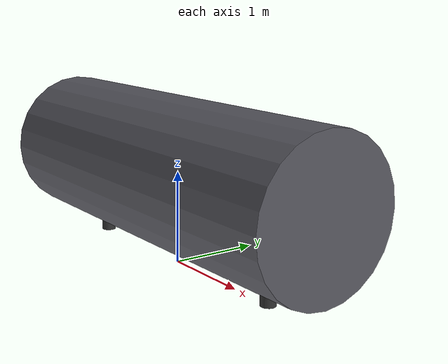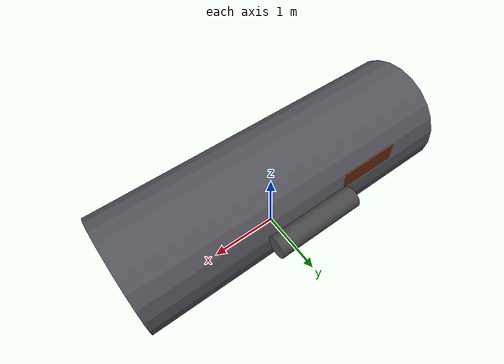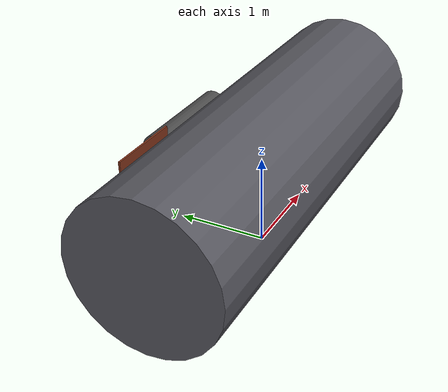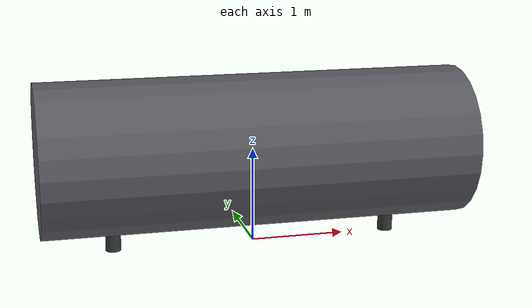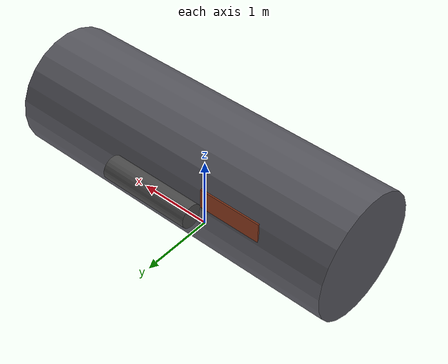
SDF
<?xml version="1.0" ?>
<sdf version="1.7">

  <model name="chemical_tank">

    <static>true</static>

    <link name="tank_link">

      <!-- INERTIA -->
      <inertial>
        <mass>800.0</mass>
        <inertia>
          <ixx>200.0</ixx>
          <iyy>800.0</iyy>
          <izz>800.0</izz>
        </inertia>
      </inertial>

      <!-- MAIN CYLINDER BODY -->
      <collision name="collision">

        <pose>0 0 1.0 0 1.57 0</pose>

        <geometry>
          <cylinder>
            <radius>0.8</radius>
            <length>4.5</length>
          </cylinder>
        </geometry>

      </collision>

      <visual name="tank_body">

        <pose>0 0 1.0 0 1.57 0</pose>

        <geometry>
          <cylinder>
            <radius>0.8</radius>
            <length>4.5</length>
          </cylinder>
        </geometry>

        <material>
          <ambient>0.2 0.2 0.2 1</ambient>
          <diffuse>0.35 0.35 0.38 1</diffuse>
          <specular>0.1 0.1 0.1 1</specular>
        </material>

      </visual>

      <!-- SUPPORT LEGS -->

      <visual name="leg_1">
        <pose>1.5 0 0.3 0 0 0</pose>

        <geometry>
          <cylinder>
            <radius>0.08</radius>
            <length>0.6</length>
          </cylinder>
        </geometry>

        <material>
          <ambient>0.15 0.15 0.15 1</ambient>
          <diffuse>0.2 0.2 0.2 1</diffuse>
        </material>
      </visual>

      <visual name="leg_2">
        <pose>-1.5 0 0.3 0 0 0</pose>

        <geometry>
          <cylinder>
            <radius>0.08</radius>
            <length>0.6</length>
          </cylinder>
        </geometry>

        <material>
          <ambient>0.15 0.15 0.15 1</ambient>
          <diffuse>0.2 0.2 0.2 1</diffuse>
        </material>
      </visual>

      <!-- PIPE CONNECTION -->
      <visual name="pipe">

        <pose>0 0.9 1.2 0 1.57 0</pose>

        <geometry>
          <cylinder>
            <radius>0.15</radius>
            <length>1.2</length>
          </cylinder>
        </geometry>

        <material>
          <ambient>0.25 0.25 0.25 1</ambient>
          <diffuse>0.3 0.3 0.3 1</diffuse>
        </material>

      </visual>

      <!-- RUST PATCH -->
      <visual name="rust_patch">

        <pose>-1.0 0.75 1.2 0 0 0</pose>

        <geometry>
          <box>
            <size>0.8 0.02 0.6</size>
          </box>
        </geometry>

        <material>
          <ambient>0.4 0.15 0.05 1</ambient>
          <diffuse>0.5 0.2 0.1 1</diffuse>
        </material>

      </visual>

    </link>

  </model>

</sdf>
